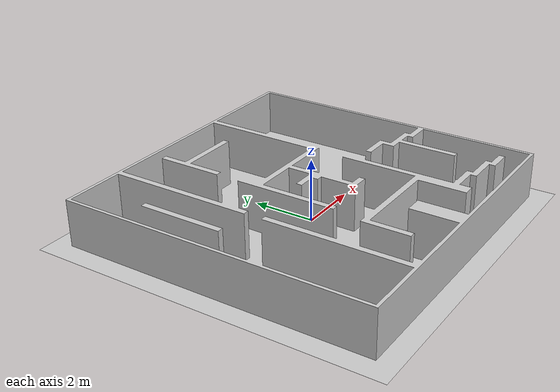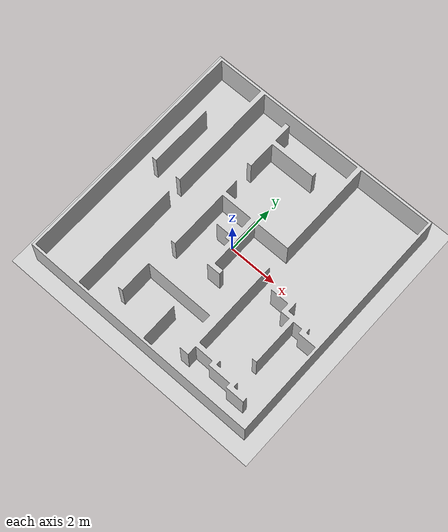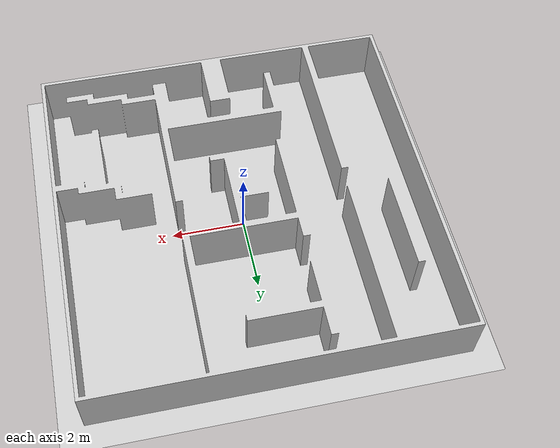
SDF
<?xml version="1.0"?>
<sdf version="1.4">
  <world name="default">
    <include>
      <uri>model://ground_plane</uri>
    </include>
    <include>
      <uri>model://sun</uri>
    </include>
    <model name="map">
    <static>false</static>
    <link name="map">
      <collision name="body_collision">
        <geometry>
         <box>
                <size>10 10 10</size>
            </box>
        </geometry>
         <surface>
          <friction>
            <ode>
              <mu>0.5</mu>
              <mu2>.5</mu2>
            </ode>
          </friction>
        </surface>
      </collision>
      <visual name="visual">
        <cast_shadows>true</cast_shadows>
        <geometry>
          <mesh>
	    <scale>1 1 1</scale>
      	    <uri>model://map/meshes/map.dae</uri>
    	  </mesh>
        </geometry>
        <material>
	  <script>
	    <uri>model://map/materials/scripts</uri>
	    <uri>model://map/materials/textures</uri>
	    <name>map/diffuse</name>
	  </script>
        </material>
      </visual>
    </link>
  </model>
  </world>
</sdf>
